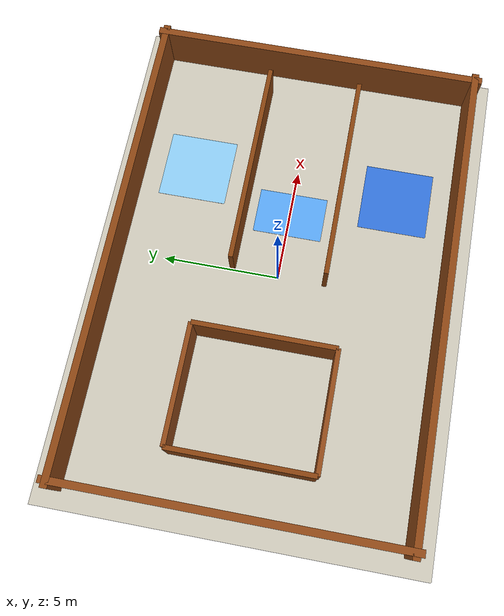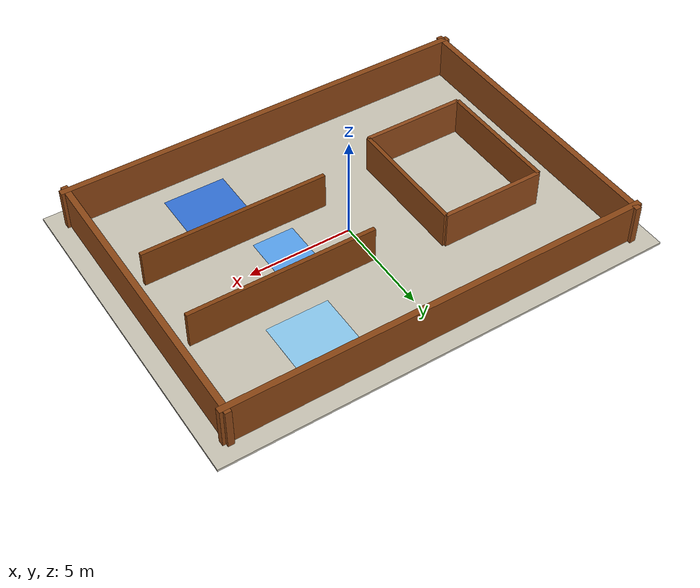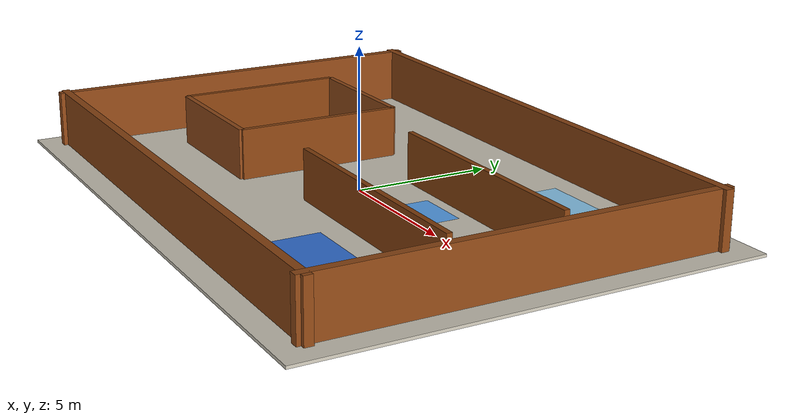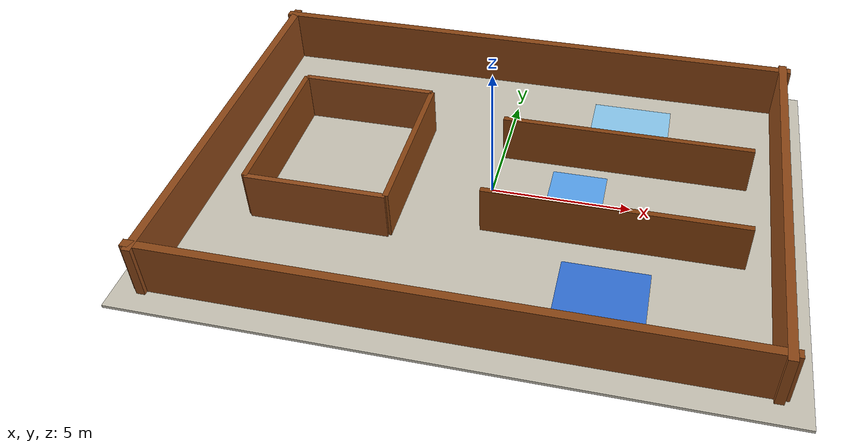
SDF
<?xml version="1.0" ?>
<sdf version="1.6">
  <world name="indoor_world">

    <plugin filename="gz-sim-physics-system"
            name="gz::sim::systems::Physics"/>
    <plugin filename="gz-sim-scene-broadcaster-system"
            name="gz::sim::systems::SceneBroadcaster"/>
    <plugin filename="gz-sim-user-commands-system"
            name="gz::sim::systems::UserCommands"/>

    <light type="directional" name="sun">
      <cast_shadows>true</cast_shadows>
      <pose>0 0 10 0 0 0</pose>
      <diffuse>0.9 0.9 0.9 1</diffuse>
      <specular>0.3 0.3 0.3 1</specular>
      <direction>-0.5 0.1 -0.9</direction>
      <attenuation>
        <range>1000</range>
        <constant>0.9</constant>
        <linear>0.01</linear>
        <quadratic>0.001</quadratic>
      </attenuation>
    </light>

    <!-- Floor -->
    <model name="floor">
      <static>true</static>
      <pose>0 0 -0.05 0 0 0</pose>
      <link name="floor_link">
        <collision name="floor_collision">
          <geometry><box><size>22 16 0.1</size></box></geometry>
        </collision>
        <visual name="floor_visual">
          <geometry><box><size>22 16 0.1</size></box></geometry>
          <material>
            <ambient>0.80 0.78 0.72 1</ambient>
            <diffuse>0.80 0.78 0.72 1</diffuse>
            <specular>0.05 0.05 0.05 1</specular>
          </material>
        </visual>
      </link>
    </model>

    <!-- OUTER WALLS (world: x=-10 to +10, y=-7 to +7) -->

    <!-- North outer wall -->
    <model name="wall_north">
      <static>true</static>
      <pose>0 7 1.0 0 0 0</pose>
      <link name="link">
        <collision name="col"><geometry><box><size>20.6 0.3 2.0</size></box></geometry></collision>
        <visual name="vis">
          <geometry><box><size>20.6 0.3 2.0</size></box></geometry>
          <material><ambient>0.545 0.271 0.075 1</ambient><diffuse>0.545 0.271 0.075 1</diffuse></material>
        </visual>
      </link>
    </model>

    <!-- South outer wall -->
    <model name="wall_south">
      <static>true</static>
      <pose>0 -7 1.0 0 0 0</pose>
      <link name="link">
        <collision name="col"><geometry><box><size>20.6 0.3 2.0</size></box></geometry></collision>
        <visual name="vis">
          <geometry><box><size>20.6 0.3 2.0</size></box></geometry>
          <material><ambient>0.550 0.275 0.080 1</ambient><diffuse>0.550 0.275 0.080 1</diffuse></material>
        </visual>
      </link>
    </model>

    <!-- East outer wall -->
    <model name="wall_east">
      <static>true</static>
      <pose>10 0 1.0 0 0 0</pose>
      <link name="link">
        <collision name="col"><geometry><box><size>0.3 14.6 2.0</size></box></geometry></collision>
        <visual name="vis">
          <geometry><box><size>0.3 14.6 2.0</size></box></geometry>
          <material><ambient>0.555 0.279 0.085 1</ambient><diffuse>0.555 0.279 0.085 1</diffuse></material>
        </visual>
      </link>
    </model>

    <!-- West outer wall -->
    <model name="wall_west">
      <static>true</static>
      <pose>-10 0 1.0 0 0 0</pose>
      <link name="link">
        <collision name="col"><geometry><box><size>0.3 14.6 2.0</size></box></geometry></collision>
        <visual name="vis">
          <geometry><box><size>0.3 14.6 2.0</size></box></geometry>
          <material><ambient>0.560 0.283 0.090 1</ambient><diffuse>0.560 0.283 0.090 1</diffuse></material>
        </visual>
      </link>
    </model>

    <!-- INNER BLOCK (left side: x=-8 to x=-3, y=-3 to y=+3) -->

    <!-- Inner block North wall -->
    <model name="block_north">
      <static>true</static>
      <pose>-5.5 3 0.9 0 0 0</pose>
      <link name="link">
        <collision name="col"><geometry><box><size>5 0.2 1.8</size></box></geometry></collision>
        <visual name="vis">
          <geometry><box><size>5 0.2 1.8</size></box></geometry>
          <material><ambient>0.565 0.287 0.095 1</ambient><diffuse>0.565 0.287 0.095 1</diffuse></material>
        </visual>
      </link>
    </model>

    <!-- Inner block South wall -->
    <model name="block_south">
      <static>true</static>
      <pose>-5.5 -3 0.9 0 0 0</pose>
      <link name="link">
        <collision name="col"><geometry><box><size>5 0.2 1.8</size></box></geometry></collision>
        <visual name="vis">
          <geometry><box><size>5 0.2 1.8</size></box></geometry>
          <material><ambient>0.570 0.291 0.100 1</ambient><diffuse>0.570 0.291 0.100 1</diffuse></material>
        </visual>
      </link>
    </model>

    <!-- Inner block East wall -->
    <model name="block_east">
      <static>true</static>
      <pose>-3 0 0.9 0 0 0</pose>
      <link name="link">
        <collision name="col"><geometry><box><size>0.2 6 1.8</size></box></geometry></collision>
        <visual name="vis">
          <geometry><box><size>0.2 6 1.8</size></box></geometry>
          <material><ambient>0.540 0.267 0.070 1</ambient><diffuse>0.540 0.267 0.070 1</diffuse></material>
        </visual>
      </link>
    </model>

    <!-- Inner block West wall -->
    <model name="block_west">
      <static>true</static>
      <pose>-8 0 0.9 0 0 0</pose>
      <link name="link">
        <collision name="col"><geometry><box><size>0.2 6 1.8</size></box></geometry></collision>
        <visual name="vis">
          <geometry><box><size>0.2 6 1.8</size></box></geometry>
          <material><ambient>0.535 0.263 0.065 1</ambient><diffuse>0.535 0.263 0.065 1</diffuse></material>
        </visual>
      </link>
    </model>

    <!-- RIGHT CORRIDOR CHANNEL (x=0 to x=+9, between y=-2 and y=+2) -->

    <!-- Corridor top wall -->
    <model name="corridor_top">
      <static>true</static>
      <pose>4.5 2 0.9 0 0 0</pose>
      <link name="link">
        <collision name="col"><geometry><box><size>9 0.2 1.8</size></box></geometry></collision>
        <visual name="vis">
          <geometry><box><size>9 0.2 1.8</size></box></geometry>
          <material><ambient>0.530 0.259 0.060 1</ambient><diffuse>0.530 0.259 0.060 1</diffuse></material>
        </visual>
      </link>
    </model>

    <!-- Corridor bottom wall -->
    <model name="corridor_bottom">
      <static>true</static>
      <pose>4.5 -2 0.9 0 0 0</pose>
      <link name="link">
        <collision name="col"><geometry><box><size>9 0.2 1.8</size></box></geometry></collision>
        <visual name="vis">
          <geometry><box><size>9 0.2 1.8</size></box></geometry>
          <material><ambient>0.525 0.255 0.055 1</ambient><diffuse>0.525 0.255 0.055 1</diffuse></material>
        </visual>
      </link>
    </model>

    <!-- Corridor patch, mu = 0.1: on the straight path east of spawn (verification test) -->
    <model name="slip_patch_corridor">
      <static>true</static>
      <pose>3.0 0.0 0.001 0 0 0</pose>
      <link name="link">
        <collision name="col">
          <geometry><box><size>2.0 3.0 0.002</size></box></geometry>
          <surface>
            <friction>
              <ode><mu>0.1</mu><mu2>0.1</mu2></ode>
            </friction>
          </surface>
        </collision>
        <visual name="vis">
          <geometry><box><size>2.0 3.0 0.002</size></box></geometry>
          <material><ambient>0.35 0.65 0.95 1</ambient><diffuse>0.35 0.65 0.95 1</diffuse></material>
        </visual>
      </link>
    </model>

    <!-- North open area, mu = 0.3 (mild slip) -->
    <model name="slip_patch_north">
      <static>true</static>
      <pose>4.5 4.5 0.001 0 0 0</pose>
      <link name="link">
        <collision name="col">
          <geometry><box><size>3.0 3.0 0.002</size></box></geometry>
          <surface>
            <friction>
              <ode><mu>0.3</mu><mu2>0.3</mu2></ode>
            </friction>
          </surface>
        </collision>
        <visual name="vis">
          <geometry><box><size>3.0 3.0 0.002</size></box></geometry>
          <material><ambient>0.55 0.80 0.95 1</ambient><diffuse>0.55 0.80 0.95 1</diffuse></material>
        </visual>
      </link>
    </model>

    <!-- South open area, mu = 0.05 (severe slip) -->
    <model name="slip_patch_south">
      <static>true</static>
      <pose>4.5 -4.5 0.001 0 0 0</pose>
      <link name="link">
        <collision name="col">
          <geometry><box><size>3.0 3.0 0.002</size></box></geometry>
          <surface>
            <friction>
              <ode><mu>0.05</mu><mu2>0.05</mu2></ode>
            </friction>
          </surface>
        </collision>
        <visual name="vis">
          <geometry><box><size>3.0 3.0 0.002</size></box></geometry>
          <material><ambient>0.20 0.45 0.85 1</ambient><diffuse>0.20 0.45 0.85 1</diffuse></material>
        </visual>
      </link>
    </model>

  </world>
</sdf>
